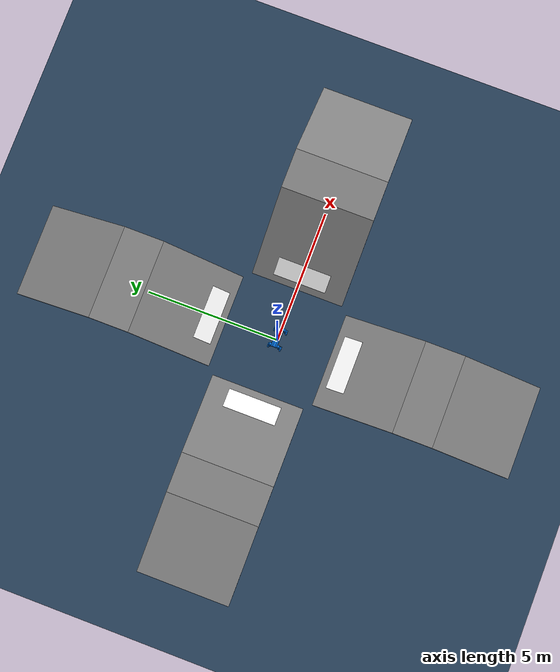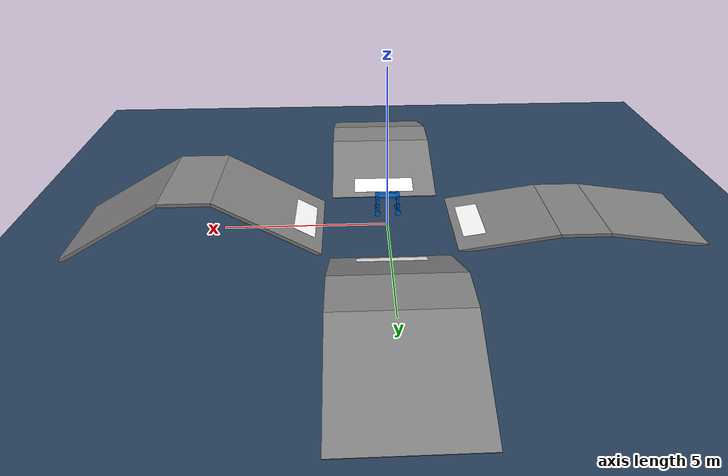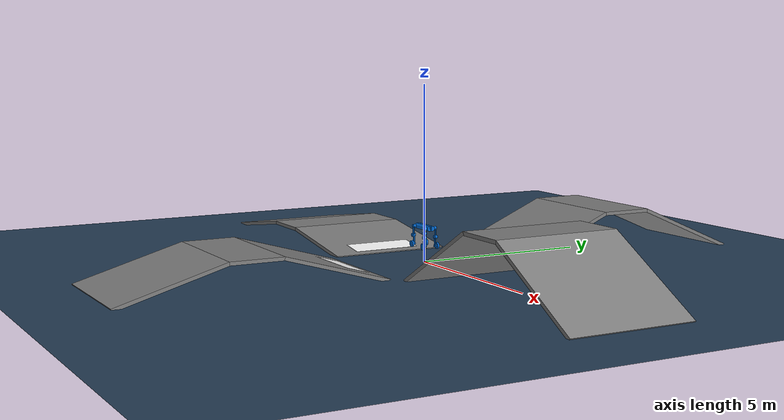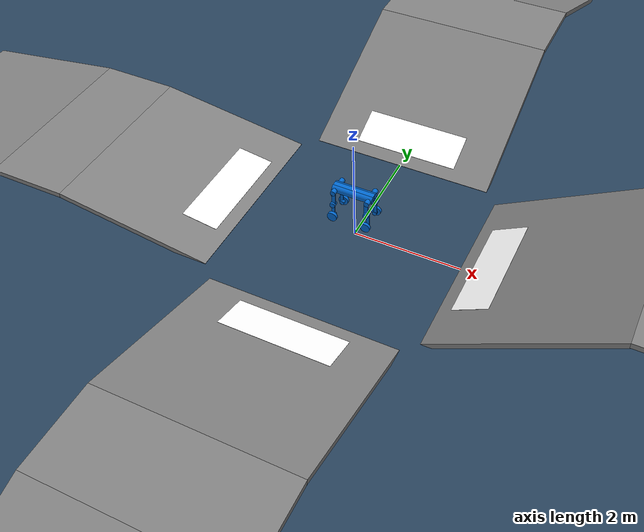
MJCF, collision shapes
<mujoco model="cross_slope">
  <include file="M20.xml"/>
  <statistic center="0 0 0.1" extent="0.8" />
  <visual>
    <headlight diffuse="0.6 0.6 0.6" ambient="0.3 0.3 0.3" specular="0 0 0" />
    <rgba haze="0.15 0.25 0.35 1" />
    <global azimuth="-130" elevation="-20" />
  </visual>
  <asset>
    <texture type="skybox" builtin="gradient" rgb1="0.3 0.5 0.7" rgb2="0 0 0" width="512" height="3072" />
    <texture type="2d" name="groundplane" builtin="checker" mark="edge" rgb1="0.2 0.3 0.4" rgb2="0.1 0.2 0.3" markrgb="0.8 0.8 0.8" width="300" height="300" />
    <material name="groundplane" texture="groundplane" texuniform="true" texrepeat="5 5" reflectance="0.0" />
    <texture name="tex_slope_8_36deg" type="2d" file="./imgs/label_slope_8.36deg.png" />
    <material name="mat_slope_8_36deg" texture="tex_slope_8_36deg" specular="0" shininess="0" emission="1" texrepeat="1 1" rgba="1 1 1 1" />
    <texture name="tex_slope_16_07deg" type="2d" file="./imgs/label_slope_16.07deg.png" />
    <material name="mat_slope_16_07deg" texture="tex_slope_16_07deg" specular="0" shininess="0" emission="1" texrepeat="1 1" rgba="1 1 1 1" />
    <texture name="tex_slope_23_22deg" type="2d" file="./imgs/label_slope_23.22deg.png" />
    <material name="mat_slope_23_22deg" texture="tex_slope_23_22deg" specular="0" shininess="0" emission="1" texrepeat="1 1" rgba="1 1 1 1" />
    <texture name="tex_slope_29_68deg" type="2d" file="./imgs/label_slope_29.68deg.png" />
    <material name="mat_slope_29_68deg" texture="tex_slope_29_68deg" specular="0" shininess="0" emission="1" texrepeat="1 1" rgba="1 1 1 1" />
    <texture name="tex_slope_35deg" type="2d" file="./imgs/label_slope_35deg.png" />
    <material name="mat_slope_35deg" texture="tex_slope_35deg" specular="0" shininess="0" emission="1" texrepeat="1 1" rgba="1 1 1 1" />
    <texture name="tex_slope_45deg" type="2d" file="./imgs/label_slope_45deg.png" />
    <material name="mat_slope_45deg" texture="tex_slope_45deg" specular="0" shininess="0" emission="1" texrepeat="1 1" rgba="1 1 1 1" />
  </asset>
  <worldbody>
    <light pos="0 0 1.5" dir="0 0 -1" directional="true" />
    <geom name="floor" size="0 0 0.05" type="plane" material="groundplane" />

    <geom pos="-2.593329632609217 7.266192354141525e-17 0.08924094950084102" type="box" size="1.0 0.35064935064935066 0.001" quat="0.7052247002012548 0.05155698038142243 0.05155698038142242 0.7052247002012547" contype="0" conaffinity="0" group="1" material="mat_slope_8_36deg" rgba="1 1 1 1" />
    <geom pos="3.371531723015055e-17 2.5506129155545008 0.23838921373370156" type="box" size="1.0 0.35064935064935066 0.001" quat="0.9795413125474028 0.20124317879846595 0.0 0.0" contype="0" conaffinity="0" group="1" material="mat_slope_23_22deg" rgba="1 1 1 1" />
    <geom pos="2.520275956027577 0.0 0.2988593809462753" type="box" size="1.0 0.35064935064935066 0.001" quat="0.6835161428585028 0.1811233901290355 -0.18112339012903547 -0.6835161428585027" contype="0" conaffinity="0" group="1" material="mat_slope_29_68deg" rgba="1 1 1 1" />
    <geom pos="3.5270529839894456e-17 -2.5760114649293357 0.16797259380613377" type="box" size="1.0 0.35064935064935066 0.001" quat="6.063148280875342e-17 8.557029219681535e-18 -0.13974689233890575 -0.9901872580889023" contype="0" conaffinity="0" group="1" material="mat_slope_16_07deg" rgba="1 1 1 1" />
    <geom pos="-3.5072718512065544 1.8458756480250123e-16 0.1710316244452101" type="box" size="1.5161201304646015 1.75 0.05" quat="6.106936001461366e-17 0.07291258089041118 -4.464607940250726e-18 0.9973383355451144" />
    <geom pos="-5.75 4.592425496802575e-16 0.39100000000000007" type="box" size="0.75 1.75 0.05" quat="6.123233995736766e-17 0.0 0.0 1.0" />
    <geom pos="-7.992728148793446 7.338975345580137e-16 0.1710316244452101" type="box" size="1.5161201304646015 1.75 0.05" quat="6.106936001461366e-17 -0.07291258089041118 4.464607940250726e-18 0.9973383355451144" />
    <geom pos="9.305555860662829e-17 3.519712600750146 0.5975498817012911" type="box" size="1.6322047206156463 1.75 0.05" quat="0.69264030455464 0.1423004163959321 -0.14230041639593213 0.6926403045546399" />
    <geom pos="2.2962127484012875e-16 5.75 1.2369999999999999" type="box" size="0.75 1.75 0.05" quat="0.7071067811865476 0.0 0.0 0.7071067811865475" />
    <geom pos="3.661869910736292e-16 7.980287399249854 0.5975498817012911" type="box" size="1.6322047206156463 1.75 0.05" quat="0.69264030455464 -0.1423004163959321 0.14230041639593213 0.6926403045546399" />
    <geom pos="3.524760152200491 0.0 0.811561136490367" type="box" size="1.7265645079173844 1.75 0.05" quat="0.9666377993314406 0.0 -0.25614715478347516 0.0" />
    <geom pos="5.75 0.0 1.66" type="box" size="0.75 1.75 0.05" quat="1.0 0.0 0.0 0.0" />
    <geom pos="7.975239847799509 0.0 0.811561136490367" type="box" size="1.7265645079173844 1.75 0.05" quat="0.9666377993314406 0.0 0.25614715478347516 0.0" />
    <geom pos="9.269581606609379e-17 -3.5138375592151503 0.38395291939183823" type="box" size="1.5609689298637561 1.75 0.05" quat="0.7001681248391769 -0.09881597522258663 -0.09881597522258664 -0.7001681248391768" />
    <geom pos="2.2962127484012875e-16 -5.75 0.8140000000000001" type="box" size="0.75 1.75 0.05" quat="0.7071067811865476 0.0 0.0 -0.7071067811865475" />
    <geom pos="3.665467336141637e-16 -7.98616244078485 0.38395291939183823" type="box" size="1.5609689298637561 1.75 0.05" quat="0.7001681248391769 0.09881597522258663 0.09881597522258664 -0.7001681248391768" />
  </worldbody>
</mujoco>

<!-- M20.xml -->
<mujoco model="M20">

    <default>
        <default class="robot">
            <default class="motor">
                <joint/>
                <motor/>
            </default>
            <default class="visual">
                <geom material="default_material" contype="0" conaffinity="0" group="2"/>
            </default>
            <default class="collision">
                <geom material="collision_material" condim="3" contype="1" conaffinity="1" solref="0.005 1"
                      friction="1 0.01 0.001" density="0" group="1"/>
            </default>
        </default>
    </default>

    <compiler angle="radian" meshdir="../meshes/"/>
    <compiler autolimits="true"/>

    <asset>
        <material name="default_material" rgba="0.7 0.7 0.7 1"/>
        <material name="collision_material" rgba="0.0 0.4 0.8 0.2"/>
        <mesh name="base_link" file="base_link.STL"/>
        <mesh name="fl_hipx" file="fl_hipx.STL"/>
        <mesh name="fl_hipy" file="fl_hipy.STL"/>
        <mesh name="fl_knee" file="fl_knee.STL"/>
        <mesh name="fl_wheel" file="fl_wheel.STL"/>
        <mesh name="fr_hipx" file="fr_hipx.STL"/>
        <mesh name="fr_hipy" file="fr_hipy.STL"/>
        <mesh name="fr_knee" file="fr_knee.STL"/>
        <mesh name="fr_wheel" file="fr_wheel.STL"/>
        <mesh name="hl_hipx" file="hl_hipx.STL"/>
        <mesh name="hl_hipy" file="hl_hipy.STL"/>
        <mesh name="hl_knee" file="hl_knee.STL"/>
        <mesh name="hl_wheel" file="hl_wheel.STL"/>
        <mesh name="hr_hipx" file="hr_hipx.STL"/>
        <mesh name="hr_hipy" file="hr_hipy.STL"/>
        <mesh name="hr_knee" file="hr_knee.STL"/>
        <mesh name="hr_wheel" file="hr_wheel.STL"/>
        <texture name="texplane" type="2d" builtin="checker" rgb1=".2 .3 .4" rgb2=".1 0.15 0.2"
                 width="512" height="512"/>
        <material name='MatPlane' reflectance='0.3' texture="texplane" texrepeat="1 1" texuniform="true"/>
    </asset>

    <worldbody>
        <!-- 灯光 -->

        <body name="base_link" pos="0 0. 1." quat="1 0 0 0" childclass="robot">
            <freejoint name="floating_base"/>
            <inertial pos="0.00355105878308153 0.0016507579200937 -0.00346462146571654"
                      quat="1 0 0 0"
                      mass="15.882" diaginertia="0.087919 0.533522 0.563492"/>

            <site name="imu_site" pos="0.0632 -0.0268 0.0435" size="0.005" rgba="1 0 0 1"/>
            <site name="base_site" pos="0 0 0" quat="1 0 0 0"/>

            <geom type="mesh" mesh="base_link" class="visual"/>
            <geom size="0.375 0.045 0.07" type="box" class="collision"/>
            <geom size="0.07 0.375" pos="0 0.045 0" quat="0.707107 0 0.707107 0" type="cylinder" class="collision"/>
            <geom size="0.07 0.375" pos="0 -0.045 0" quat="0.707107 0 0.707107 0" type="cylinder" class="collision"/>

            <body name="fl_hipx" pos="0.3141 0.0685 0">
                <inertial pos="-0.0111893 0.00891693 0.000405666" quat="0.581628 0.481707 0.465607 0.461387"
                          mass="0.259964"
                          diaginertia="0.000374402 0.000286289 0.000179309"/>
                <joint name="fl_hipx_joint" pos="0 0 0" axis="-1 0 0" range="-0.436 0.611"
                       actuatorfrcrange="-76.4 76.4"/>
                <geom type="mesh" mesh="fl_hipx" class="visual"/>
                <geom size="0.048 0.07" pos="0 0.055 0" quat="0.707107 0.707107 0 0" type="cylinder" class="collision"/>
                <body name="fl_hipy">
                    <inertial pos="-0.00199375 0.098439 -0.130664" quat="0.6754 -0.0565887 0.0622156 0.73264"
                              mass="2.618"
                              diaginertia="0.0410181 0.0408067 0.00297328"/>
                    <joint name="fl_hipy_joint" pos="0 0 0" axis="0 -1 0" range="-2.286 2.583"
                           actuatorfrcrange="-76.4 76.4"/>
                    <geom type="mesh" mesh="fl_hipy" class="visual"/>
                    <geom size="0.035 0.01 0.125" pos="-0.01 0.11 -0.125" type="box" class="collision"/>
                    <geom size="0.05 0.045" pos="0 0.11 -0.25" quat="0.707107 0.707107 0 0" type="cylinder"
                          class="collision"/>
                    <body name="fl_knee" pos="0 0.0984 -0.25">
                        <inertial pos="0.00341917 0.00269124 -0.181265" quat="0.633405 -0.0508555 0.0475887 0.77068"
                                  mass="1.145" diaginertia="0.0121304 0.0117245 0.000948105"/>
                        <joint name="fl_knee_joint" pos="0 0 0" axis="0 -1 0" range="-2.809 2.792"
                               actuatorfrcrange="-76.4 76.4"/>
                        <geom type="mesh" mesh="fl_knee" class="visual"/>
                        <geom size="0.03 0.0125 0.125" pos="0.015 -0.015 -0.125" type="box" class="collision"/>
                        <geom size="0.04 0.05" pos="0 0.02 -0.25" quat="0.707107 0.707107 0 0" type="cylinder"
                              class="collision"/>
                        <body name="fl_wheel" pos="0 0.059676 -0.25">
                            <inertial pos="-3.11398e-07 0.000279002 5.70329e-07" quat="0.707107 0 0 0.707107"
                                      mass="0.638"
                                      diaginertia="0.002853 0.001535 0.001535"/>
                            <joint name="fl_wheel_joint" pos="0 0 0" axis="0 -1 0" actuatorfrcrange="-21.6 21.6"/>
                            <geom type="mesh" mesh="fl_wheel" class="visual"/>
                            <geom size="0.09 0.027" quat="0.707107 0.707107 0 0" type="cylinder" class="collision"/>
                        </body>
                    </body>
                </body>
            </body>
            <body name="fr_hipx" pos="0.3141 -0.0685 0">
                <inertial pos="-0.0110901 -0.00875035 0.000521421" quat="0.461387 0.465607 0.481707 0.581628"
                          mass="0.259964" diaginertia="0.000374402 0.000286289 0.000179309"/>
                <joint name="fr_hipx_joint" pos="0 0 0" axis="-1 0 0" range="-0.611 0.436"
                       actuatorfrcrange="-76.4 76.4"/>
                <geom type="mesh" mesh="fr_hipx" class="visual"/>
                <geom size="0.048 0.07" pos="0 -0.055 0" quat="0.707107 0.707107 0 0" type="cylinder"
                      class="collision"/>
                <body name="fr_hipy">
                    <inertial pos="-0.00229992 -0.0989709 -0.130925" quat="0.6964 0.0586688 -0.0587886 0.712831"
                              mass="2.618" diaginertia="0.0407542 0.040538 0.00301281"/>
                    <joint name="fr_hipy_joint" pos="0 0 0" axis="0 -1 0" range="-2.286 2.583"
                           actuatorfrcrange="-76.4 76.4"/>
                    <geom type="mesh" mesh="fr_hipy" class="visual"/>
                    <geom size="0.035 0.01 0.125" pos="-0.01 -0.11 -0.125" type="box" class="collision"/>
                    <geom size="0.05 0.045" pos="0 -0.11 -0.25" quat="0.707107 0.707107 0 0" type="cylinder"
                          class="collision"/>
                    <body name="fr_knee" pos="0 -0.0984 -0.25">
                        <inertial pos="0.00354945 -0.00247884 -0.180089" quat="0.769194 0.0472982 -0.0504711 0.635261"
                                  mass="1.145" diaginertia="0.0122564 0.0118448 0.000951718"/>
                        <joint name="fr_knee_joint" pos="0 0 0" axis="0 -1 0" range="-2.809 2.792"
                               actuatorfrcrange="-76.4 76.4"/>
                        <geom type="mesh" mesh="fr_knee" class="visual"/>
                        <geom size="0.03 0.0125 0.125" pos="0.015 0.015 -0.125" type="box" class="collision"/>
                        <geom size="0.04 0.05" pos="0 -0.02 -0.25" quat="0.707107 0.707107 0 0" type="cylinder"
                              class="collision"/>
                        <body name="fr_wheel" pos="0 -0.059676 -0.25">
                            <inertial pos="-6.47327e-07 -0.000279012 -4.6242e-08" quat="0.707107 0 0 0.707107"
                                      mass="0.638"
                                      diaginertia="0.002853 0.001535 0.001535"/>
                            <joint name="fr_wheel_joint" pos="0 0 0" axis="0 -1 0" actuatorfrcrange="-21.6 21.6"/>
                            <geom type="mesh" mesh="fr_wheel" class="visual"/>
                            <geom size="0.09 0.027" quat="0.707107 0.707107 0 0" type="cylinder" class="collision"/>
                        </body>
                    </body>
                </body>
            </body>
            <body name="hl_hipx" pos="-0.3141 0.0685 0">
                <inertial pos="0.0110901 0.00875014 0.000524884" quat="0.465607 0.461387 0.581628 0.481707"
                          mass="0.259964"
                          diaginertia="0.000374402 0.000286289 0.000179309"/>
                <joint name="hl_hipx_joint" pos="0 0 0" axis="-1 0 0" range="-0.436 0.611"
                       actuatorfrcrange="-76.4 76.4"/>
                <geom type="mesh" mesh="hl_hipx" class="visual"/>
                <geom size="0.048 0.07" pos="0 0.055 0" quat="0.707107 0.707107 0 0" type="cylinder" class="collision"/>
                <body name="hl_hipy">
                    <inertial pos="0.00204343 0.0990227 -0.130697" quat="0.750359 -0.0628584 0.0546506 0.655761"
                              mass="2.618" diaginertia="0.0408376 0.0406211 0.00299727"/>
                    <joint name="hl_hipy_joint" pos="0 0 0" axis="0 -1 0" range="-2.583 2.286"
                           actuatorfrcrange="-76.4 76.4"/>
                    <geom type="mesh" mesh="hl_hipy" class="visual"/>
                    <geom size="0.035 0.01 0.125" pos="0.01 0.11 -0.125" type="box" class="collision"/>
                    <geom size="0.05 0.045" pos="0 0.11 -0.25" quat="0.707107 0.707107 0 0" type="cylinder"
                          class="collision"/>
                    <body name="hl_knee" pos="0 0.0984 -0.25">
                        <inertial pos="-0.00354945 0.00247885 -0.180089" quat="0.769194 -0.0472982 0.0504711 0.635261"
                                  mass="1.145" diaginertia="0.0122564 0.0118448 0.000951718"/>
                        <joint name="hl_knee_joint" pos="0 0 0" axis="0 -1 0" range="-2.792 2.809"
                               actuatorfrcrange="-76.4 76.4"/>
                        <geom type="mesh" mesh="hl_knee" class="visual"/>
                        <geom size="0.03 0.0125 0.125" pos="-0.015 0.015 -0.125" type="box" class="collision"/>
                        <geom size="0.04 0.05" pos="0 0.02 -0.25" quat="0.707107 0.707107 0 0" type="cylinder"
                              class="collision"/>
                        <body name="hl_wheel" pos="0 0.059676 -0.25">
                            <inertial pos="-6.07889e-07 0.000279009 2.1049e-07" quat="0.707107 0 0 0.707107"
                                      mass="0.638"
                                      diaginertia="0.002853 0.001535 0.001535"/>
                            <joint name="hl_wheel_joint" pos="0 0 0" axis="0 -1 0" actuatorfrcrange="-21.6 21.6"/>
                            <geom type="mesh" mesh="hl_wheel" class="visual"/>
                            <geom size="0.09 0.027" quat="0.707107 0.707107 0 0" type="cylinder" class="collision"/>
                        </body>
                    </body>
                </body>
            </body>
            <body name="hr_hipx" pos="-0.3141 -0.0685 0">
                <inertial pos="0.0110902 -0.00875012 0.000524937" quat="0.481707 0.581628 0.461387 0.465607"
                          mass="0.259964"
                          diaginertia="0.000374402 0.000286289 0.000179309"/>
                <joint name="hr_hipx_joint" pos="0 0 0" axis="-1 0 0" range="-0.611 0.436"
                       actuatorfrcrange="-76.4 76.4"/>
                <geom type="mesh" mesh="hr_hipx" class="visual"/>
                <geom size="0.048 0.07" pos="0 -0.055 0" quat="0.707107 0.707107 0 0" type="cylinder"
                      class="collision"/>
                <body name="hr_hipy">
                    <inertial pos="0.001992 -0.0983704 -0.130561" quat="0.676694 0.0567616 -0.0621797 0.731435"
                              mass="2.618"
                              diaginertia="0.0410109 0.0408028 0.00297526"/>
                    <joint name="hr_hipy_joint" pos="0 0 0" axis="0 -1 0" range="-2.583 2.286"
                           actuatorfrcrange="-76.4 76.4"/>
                    <geom type="mesh" mesh="hr_hipy" class="visual"/>
                    <geom size="0.035 0.01 0.125" pos="0.01 -0.11 -0.125" type="box" class="collision"/>
                    <geom size="0.05 0.045" pos="0 -0.11 -0.25" quat="0.707107 0.707107 0 0" type="cylinder"
                          class="collision"/>
                    <body name="hr_knee" pos="0 -0.0984 -0.25">
                        <inertial pos="-0.00341053 -0.00270202 -0.181287" quat="0.63448 0.050937 -0.0475303 0.769793"
                                  mass="1.145" diaginertia="0.0121352 0.0117289 0.000948904"/>
                        <joint name="hr_knee_joint" pos="0 0 0" axis="0 -1 0" range="-2.792 2.809"
                               actuatorfrcrange="-76.4 76.4"/>
                        <geom type="mesh" mesh="hr_knee" class="visual"/>
                        <geom size="0.03 0.0125 0.125" pos="-0.015 0.015 -0.125" type="box" class="collision"/>
                        <geom size="0.04 0.05" pos="0 -0.02 -0.25" quat="0.707107 0.707107 0 0" type="cylinder"
                              class="collision"/>
                        <body name="hr_wheel" pos="0 -0.059676 -0.25">
                            <inertial pos="6.09746e-07 -0.000279009 2.01314e-07" quat="0.707107 0 0 0.707107"
                                      mass="0.638"
                                      diaginertia="0.002853 0.001535 0.001535"/>
                            <joint name="hr_wheel_joint" pos="0 0 0" axis="0 -1 0" actuatorfrcrange="-21.6 21.6"/>
                            <geom type="mesh" mesh="hr_wheel" class="visual"/>
                            <geom size="0.09 0.027" quat="0.707107 0.707107 0 0" type="cylinder" class="collision"/>
                        </body>
                    </body>
                </body>
            </body>
        </body>
    </worldbody>

    <actuator>
        <motor name="fl_hipx_joint" joint="fl_hipx_joint" ctrllimited="true" ctrlrange="-76.4 76.4" gear="1"/>
        <motor name="fl_hipy_joint" joint="fl_hipy_joint" ctrllimited="true" ctrlrange="-76.4 76.4" gear="1"/>
        <motor name="fl_knee_joint" joint="fl_knee_joint" ctrllimited="true" ctrlrange="-76.4 76.4" gear="1"/>
        <motor name="fl_wheel_joint" joint="fl_wheel_joint" ctrllimited="true" ctrlrange="-21.6 21.6" gear="1"/>
        <motor name="fr_hipx_joint" joint="fr_hipx_joint" ctrllimited="true" ctrlrange="-76.4 76.4" gear="1"/>
        <motor name="fr_hipy_joint" joint="fr_hipy_joint" ctrllimited="true" ctrlrange="-76.4 76.4" gear="1"/>
        <motor name="fr_knee_joint" joint="fr_knee_joint" ctrllimited="true" ctrlrange="-76.4 76.4" gear="1"/>
        <motor name="fr_wheel_joint" joint="fr_wheel_joint" ctrllimited="true" ctrlrange="-21.6 21.6" gear="1"/>
        <motor name="hl_hipx_joint" joint="hl_hipx_joint" ctrllimited="true" ctrlrange="-76.4 76.4" gear="1"/>
        <motor name="hl_hipy_joint" joint="hl_hipy_joint" ctrllimited="true" ctrlrange="-76.4 76.4" gear="1"/>
        <motor name="hl_knee_joint" joint="hl_knee_joint" ctrllimited="true" ctrlrange="-76.4 76.4" gear="1"/>
        <motor name="hl_wheel_joint" joint="hl_wheel_joint" ctrllimited="true" ctrlrange="-21.6 21.6" gear="1"/>
        <motor name="hr_hipx_joint" joint="hr_hipx_joint" ctrllimited="true" ctrlrange="-76.4 76.4" gear="1"/>
        <motor name="hr_hipy_joint" joint="hr_hipy_joint" ctrllimited="true" ctrlrange="-76.4 76.4" gear="1"/>
        <motor name="hr_knee_joint" joint="hr_knee_joint" ctrllimited="true" ctrlrange="-76.4 76.4" gear="1"/>
        <motor name="hr_wheel_joint" joint="hr_wheel_joint" ctrllimited="true" ctrlrange="-21.6 21.6" gear="1"/>
    </actuator>

    <contact>
        <exclude body1="base_link" body2="fl_hipx"/>
        <exclude body1="fl_hipx" body2="fl_hipy"/>
        <exclude body1="fl_hipy" body2="fl_knee"/>
        <exclude body1="fl_knee" body2="fl_wheel"/>

        <exclude body1="base_link" body2="fr_hipx"/>
        <exclude body1="fr_hipx" body2="fr_hipy"/>
        <exclude body1="fr_hipy" body2="fr_knee"/>
        <exclude body1="fr_knee" body2="fr_wheel"/>

        <exclude body1="base_link" body2="hl_hipx"/>
        <exclude body1="hl_hipx" body2="hl_hipy"/>
        <exclude body1="hl_hipy" body2="hl_knee"/>
        <exclude body1="hl_knee" body2="hl_wheel"/>

        <exclude body1="base_link" body2="hr_hipx"/>
        <exclude body1="hr_hipx" body2="hr_hipy"/>
        <exclude body1="hr_hipy" body2="hr_knee"/>
        <exclude body1="hr_knee" body2="hr_wheel"/>

    </contact>

    <sensor>
        <framequat name="base_quat" objtype="site" objname="base_site"/>
        <accelerometer site="imu_site"/>
        <gyro site="imu_site"/>

    </sensor>
</mujoco>
